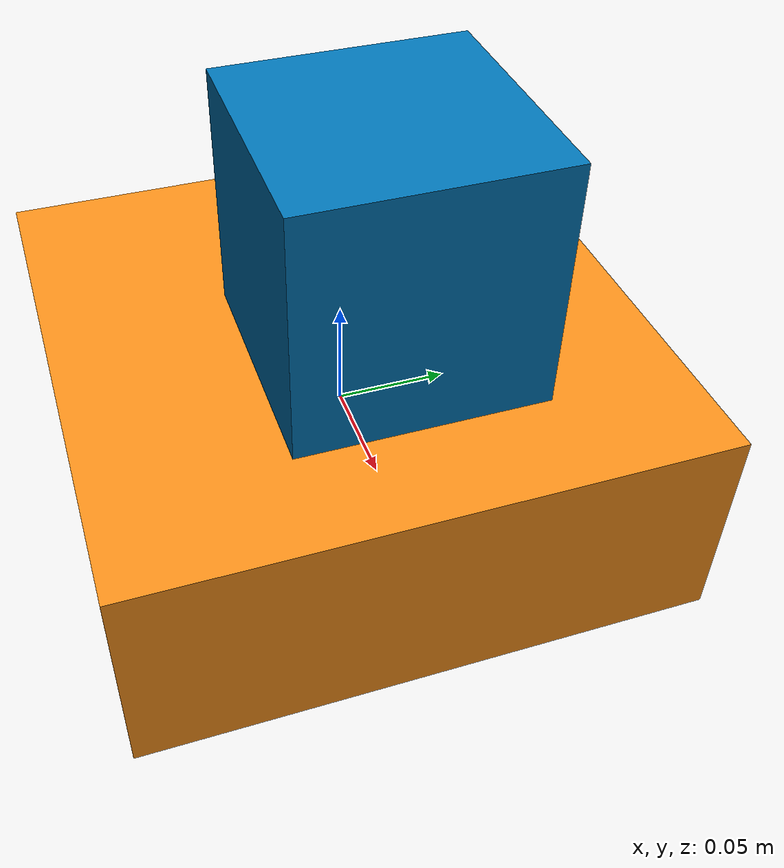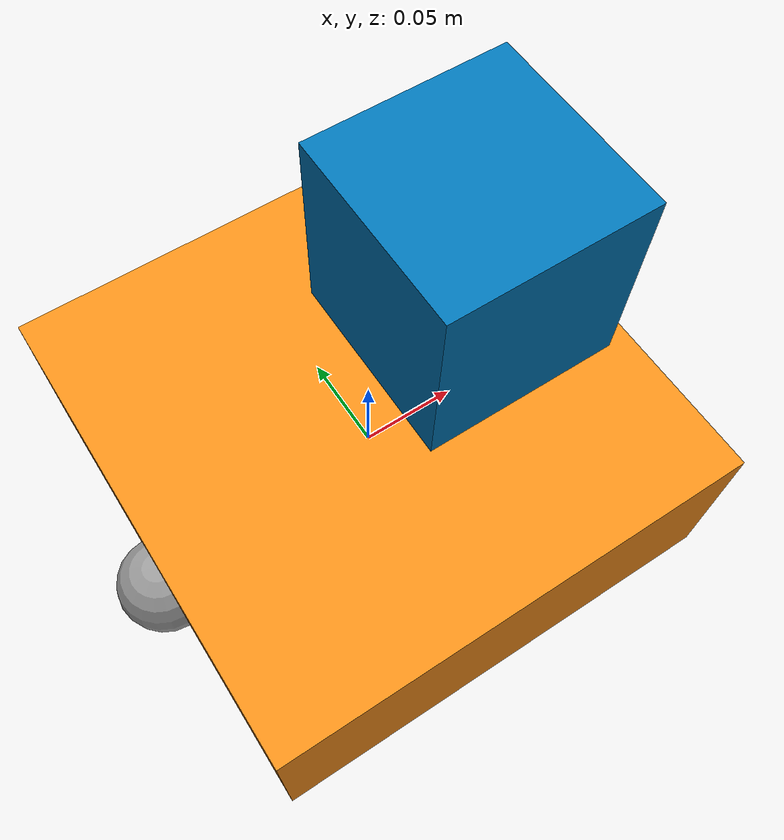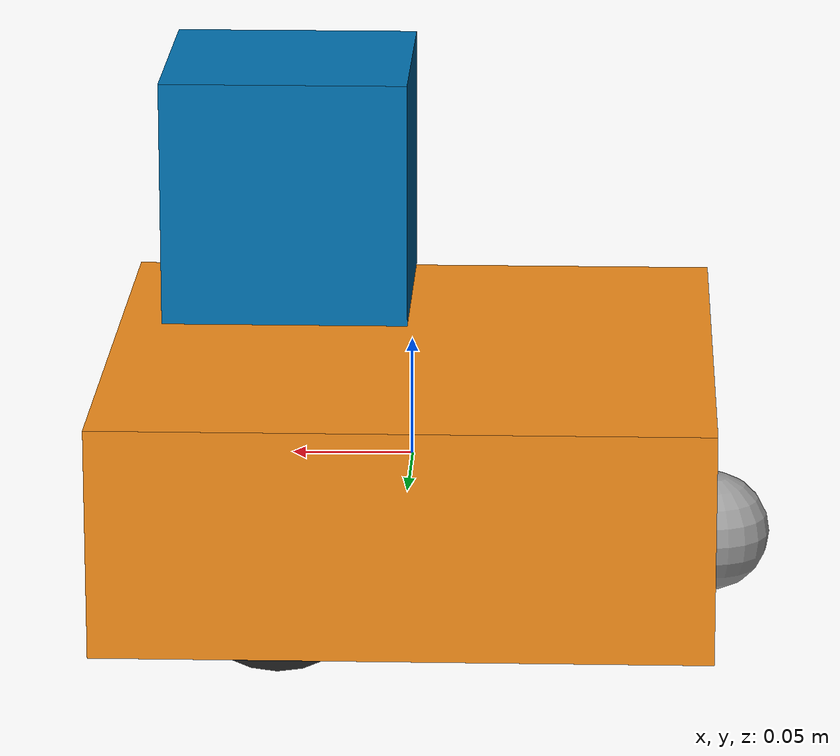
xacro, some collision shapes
<?xml version='1.0'?>

<robot name="rosie" xmlns:xacro="http://www.ros.org/wiki/xacro">

  <xacro:property name="PI" value="3.1415926535897931"/>

  <xacro:property name="chassisHeight" value="0.095"/>
  <xacro:property name="chassisWidth" value="0.250"/>
  <xacro:property name="chassisLength" value="0.250"/>
  <xacro:property name="chassisMass" value="4"/>
  <xacro:property name="groundClearance" value="0.01"/>

  <xacro:property name="casterRadius" value="0.025"/>
  <xacro:property name="casterMass" value="0.025"/>

  <xacro:property name="wheelRadius" value="0.040"/>
  <xacro:property name="wheelWidth" value="0.020"/>
  <xacro:property name="wheelBase" value="0.200"/>
  <xacro:property name="wheelMass" value="0.05"/>

  <xacro:include filename="$(find rosie_description)/urdf/rosie.gazebo" />
  <xacro:include filename="$(find rosie_description)/urdf/materials.xacro" />
  <xacro:include filename="$(find rosie_description)/urdf/macros.xacro" />

  <link name='base_link'>
    <inertial>
      <origin xyz="0 0 0" rpy="0 0 0"/>
      <mass value="${chassisMass}"/>
      <box_inertia m="${chassisMass}" x="${chassisLength}" y="${chassisWidth}" z="${chassisHeight}"/>
    </inertial>

    <collision name='collision'>
      <origin xyz="0 0 0" rpy="0 0 0"/>
      <geometry>
        <box size="${chassisLength} ${chassisWidth} ${chassisHeight}"/>
      </geometry>
    </collision>

    <visual name='base_link_visual'>
      <origin xyz="0 0 0" rpy="0 0 0"/>
      <geometry>
        <box size="${chassisLength} ${chassisWidth} ${chassisHeight}"/>
      </geometry>
    </visual>
  </link>

  <link name="caster_wheel">
    <collision>
      <origin xyz="-0.145 0 ${casterRadius-(chassisHeight/2+groundClearance)}" rpy="0 0 0"/>
      <geometry>
        <sphere radius="${casterRadius}"/>
      </geometry>
    </collision>

    <visual>
      <origin xyz="-0.125 0 ${casterRadius-(chassisHeight/2+groundClearance)}" rpy="0 0 0"/>
      <geometry>
        <sphere radius="${casterRadius}"/>
      </geometry>
    </visual>

    <inertial>
      <origin xyz="-0.125 0 ${casterRadius-(chassisHeight/2+groundClearance)}" rpy="0 0 0"/>
        <mass value="${casterMass}"/>
      <sphere_inertia m="${casterMass}" r="${casterRadius}"/>
    </inertial>
  </link>

  <joint type="fixed" name="caster_wheel_joint">
    <child link="caster_wheel"/>
    <parent link="base_link"/>
  </joint>

  <wheel lr="left" tY="1"/>
  <wheel lr="right" tY="-1"/>

<!-- Hokuyo Laser -->
  <link name="hokuyo">
    <collision>
      <origin xyz="0 0 0" rpy="0 0 0"/>
      <geometry>
    <box size="0.1 0.1 0.1"/>
      </geometry>
    </collision>

    <visual>
      <origin xyz="0 0 0" rpy="0 0 0"/>
      <geometry>
        <mesh filename="package://rosie_description/meshes/hokuyo.dae"/>
      </geometry>
    </visual>

    <inertial>
      <mass value="1e-5" />
      <origin xyz="0 0 0" rpy="0 0 0"/>
      <inertia ixx="1e-6" ixy="0" ixz="0" iyy="1e-6" iyz="0" izz="1e-6" />
    </inertial>
  </link>

  <joint name="hokuyo_joint" type="fixed">
    <origin xyz=".05 0 .12" rpy="0 0 0"/>
    <parent link="base_link"/>
    <child link="hokuyo"/>
  </joint>

<!-- IMU -->
  <link name="imu_link">
    <collision>
      <origin xyz="0 0 0" rpy="0 0 0"/>
      <geometry>
    <box size="0.01 0.01 0.01"/>
      </geometry>
    </collision>

    <visual>
      <origin xyz="0 0 0" rpy="0 0 0"/>
      <geometry>
        <box size="0.01 0.01 0.01" />
      </geometry>
    </visual>

    <inertial>
      <mass value="1e-5" />
      <origin xyz="0 0 0" rpy="0 0 0"/>
      <inertia ixx="1e-6" ixy="0" ixz="0" iyy="1e-6" iyz="0" izz="1e-6" />
    </inertial>
  </link>

  <joint name="imu_joint" type="fixed">
    <origin xyz="-0.040 -0.085 -0.03" rpy="0 0 0"/>
    <parent link="base_link"/>
    <child link="imu_link"/>
  </joint>

</robot>

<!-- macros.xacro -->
<robot>

     <macro name="cylinder_inertia" params="m r h">
        <inertia  ixx="${m*(3*r*r+h*h)/12}" ixy = "0" ixz = "0"
                  iyy="${m*(3*r*r+h*h)/12}" iyz = "0"
                  izz="${m*r*r/2}" />
      </macro>

      <macro name="box_inertia" params="m x y z">
        <inertia  ixx="${m*(y*y+z*z)/12}" ixy = "0" ixz = "0"
                  iyy="${m*(x*x+z*z)/12}" iyz = "0"
                  izz="${m*(x*x+z*z)/12}" />
      </macro>

      <macro name="sphere_inertia" params="m r">
        <inertia  ixx="${2*m*r*r/5}" ixy = "0" ixz = "0"
                  iyy="${2*m*r*r/5}" iyz = "0"
                  izz="${2*m*r*r/5}" />
      </macro>

     <macro name="wheel" params="lr tY">

       <link name="${lr}_wheel">
        <collision>
          <origin xyz="0 0 0" rpy="0 ${PI/2} ${PI/2}" />
          <geometry>
           <cylinder length="${wheelWidth}" radius="${wheelRadius}"/>
          </geometry>
        </collision>

        <visual>
          <origin xyz="0 0 0" rpy="0 ${PI/2} ${PI/2}" />
          <geometry>
           <cylinder length="${wheelWidth}" radius="${wheelRadius}"/>
          </geometry>
          <material name="black"/>
        </visual>

        <inertial>
          <origin xyz="0 0 0" rpy="0 ${PI/2} ${PI/2}" />
          <mass value="${wheelMass}"/>
          <cylinder_inertia m="${wheelMass}" r="${wheelRadius}" h="${wheelWidth}"/>
        </inertial>
       </link>

       <joint name="${lr}_wheel_hinge" type="continuous">
          <parent link="base_link"/>
          <child link="${lr}_wheel"/>
          <origin xyz=".05 ${tY*wheelBase/2} ${wheelRadius-(chassisHeight/2+groundClearance)}" rpy="0 0 0" />
          <axis xyz="0 1 0" rpy="0 0 0" />
          <limit effort="100" velocity="100"/>
          <joint_properties damping="0.0" friction="0.0"/>
        </joint>

     </macro>
</robot>
